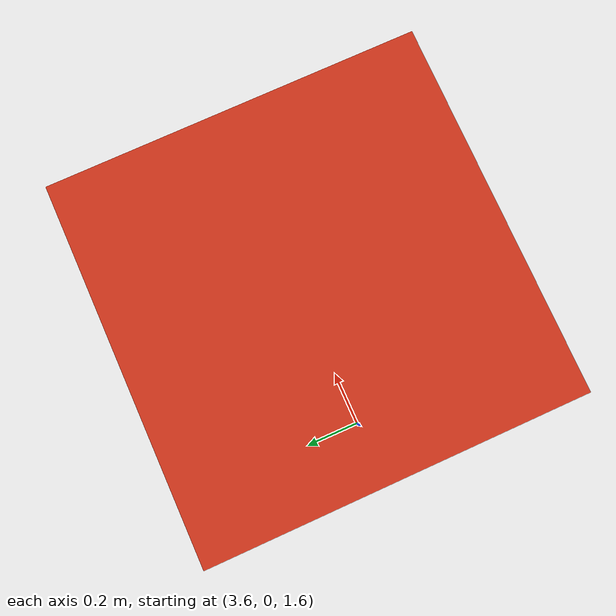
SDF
<?xml version="1.0"?>
<sdf version="1.9">
  <world name="camera_stream_smoke">
    <physics name="physics" type="ode">
      <max_step_size>0.001</max_step_size>
      <real_time_update_rate>1000</real_time_update_rate>
    </physics>
    <scene><ambient>0.5 0.5 0.5 1</ambient><background>0.1 0.2 0.3 1</background></scene>
    <light name="sun" type="directional">
      <pose>0 0 10 0 0 0</pose>
      <diffuse>0.8 0.8 0.8 1</diffuse>
      <specular>0.2 0.2 0.2 1</specular>
      <direction>-0.5 0.1 -0.9</direction>
    </light>
    <plugin filename="gz-sim-physics-system" name="gz::sim::systems::Physics"></plugin>
    <plugin filename="gz-sim-user-commands-system" name="gz::sim::systems::UserCommands"></plugin>
    <plugin filename="gz-sim-scene-broadcaster-system" name="gz::sim::systems::SceneBroadcaster"></plugin>
    <plugin filename="gz-sim-sensors-system" name="gz::sim::systems::Sensors"><render_engine>ogre2</render_engine></plugin>
    <plugin filename="libGstPlaneCameraSystem.so" name="custom::GstPlaneCameraSystem"></plugin>
    <model name="ground">
      <static>true</static>
      <link name="ground_link">
        <collision name="ground_collision"><geometry><plane><normal>0 0 1</normal><size>20 20</size></plane></geometry></collision>
        <visual name="ground_visual">
          <geometry><plane><normal>0 0 1</normal><size>20 20</size></plane></geometry>
          <material><ambient>0.2 0.6 0.2 1</ambient><diffuse>0.2 0.6 0.2 1</diffuse></material>
        </visual>
      </link>
    </model>
    <model name="target">
      <static>true</static>
      <pose>4 0 2 0 0 0</pose>
      <link name="target_link">
        <visual name="target_visual">
          <geometry><box><size>1 1 1</size></box></geometry>
          <material><ambient>0.8 0.2 0.1 1</ambient><diffuse>0.8 0.2 0.1 1</diffuse></material>
        </visual>
      </link>
    </model>
  <model name="stream_camera">
    <static>true</static>
    <pose>0 0 2 0 0 0</pose>
    <link name="camera_link">
      <sensor name="camera_front" type="camera">
        <pose>0 0 0 0 0 0</pose>
        <always_on>true</always_on>
        <update_rate>30</update_rate>
        <visualize>false</visualize>
        <camera>
          <horizontal_fov>1.0</horizontal_fov>
          <image><width>320</width><height>240</height><format>R8G8B8</format></image>
          <clip><near>0.05</near><far>100</far></clip>
        </camera>
        <plugin filename="libGstPlaneCameraSystem.so" name="custom::GstPlaneCameraSystem">
          <camera_name>camera_front</camera_name>
          <udp_host>127.0.0.1</udp_host>
          <udp_port>5606</udp_port>
          <rate>30</rate>
          <bitrate_kbps>16384</bitrate_kbps>
          <use_cuda>false</use_cuda>
          <x264_speed_preset>1</x264_speed_preset>
        </plugin>
      </sensor>
      <sensor name="camera_down" type="camera">
        <pose>0 0 0 0 1.57079632679 0</pose>
        <always_on>true</always_on>
        <update_rate>30</update_rate>
        <visualize>false</visualize>
        <camera>
          <horizontal_fov>1.0</horizontal_fov>
          <image><width>320</width><height>240</height><format>R8G8B8</format></image>
          <clip><near>0.05</near><far>100</far></clip>
        </camera>
        <plugin filename="libGstPlaneCameraSystem.so" name="custom::GstPlaneCameraSystem">
          <camera_name>camera_down</camera_name>
          <udp_host>127.0.0.1</udp_host>
          <udp_port>5604</udp_port>
          <rate>15</rate>
          <bitrate_kbps>4096</bitrate_kbps>
          <use_cuda>false</use_cuda>
          <x264_speed_preset>1</x264_speed_preset>
        </plugin>
      </sensor>
    </link>
  </model>
  </world>
</sdf>
